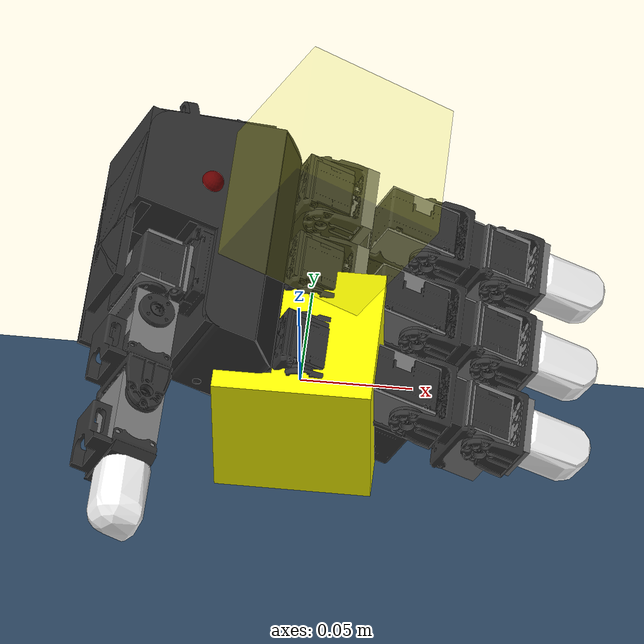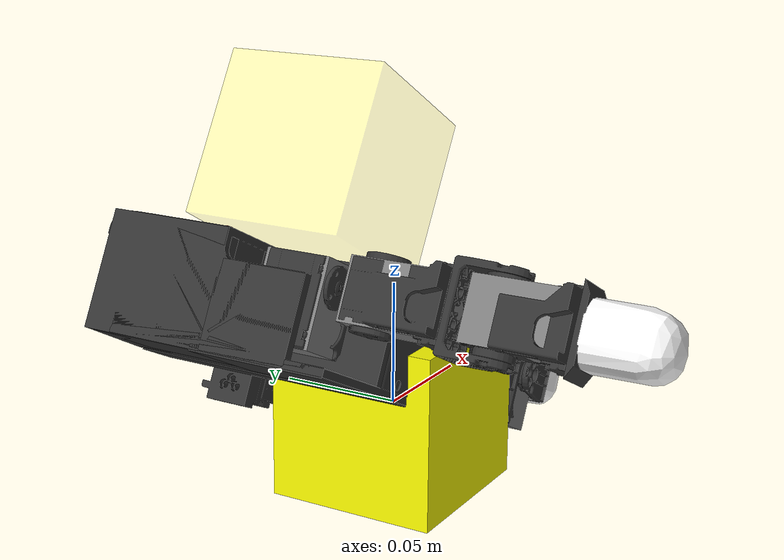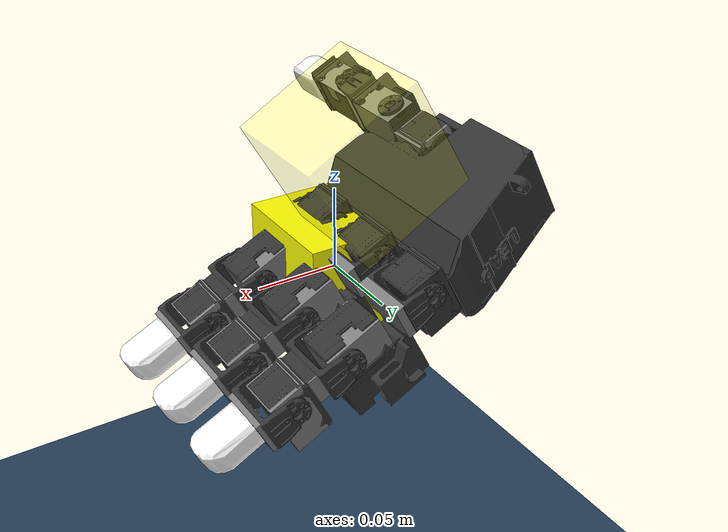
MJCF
<mujoco model="leap_scene">
  <include file="leap_right_hand.xml"/>

  <option timestep="0.005" ccd_iterations="25">
  </option>

  <statistic center="0.15 0 0" extent="0.4" meansize="0.01"/>

  <visual>
    <headlight diffuse=".8 .8 .8" ambient=".2 .2 .2" specular="1 1 1"/>
    <rgba force="1 0 0 1"/>
    <global azimuth="120" elevation="-20"/>
    <map force="0.01" stiffness="500"/>
    <scale forcewidth="0.1" contactwidth="0.5" contactheight="0.2"/>
    <quality shadowsize="8192"/>
  </visual>

  <asset>
    <texture type="skybox" builtin="gradient" rgb1="0.3 0.5 0.7" rgb2="0 0 0" width="512" height="3072"/>
    <texture type="2d" name="groundplane" builtin="checker" mark="edge" rgb1="0.2 0.3 0.4" rgb2="0.1 0.2 0.3"
      markrgb="0.8 0.8 0.8" width="300" height="300"/>
    <material name="groundplane" texture="groundplane" texuniform="true" texrepeat="5 5" reflectance="0.2"/>

    <texture name='cube_surface' file="iris_block.png" gridsize="3 4" gridlayout=".U..LFRB.D.."/>
    <material name="obj_material" texture="cube_surface" specular="5" shininess=".0"/>
  </asset>

  <worldbody>
    <camera name="side" pos="0.0 -0.1 0.3" xyaxes="1.0 0.0 0.0 0.0 1.0 0.6"/>

    <camera name="top" pos="0.2 0.02 0.4" xyaxes="0.0 1.0 0.0 -1.0 0.0 0.5"/>

    <geom name="floor" pos="0 0 -0.25" size="0 0 0.01" type="plane" material="groundplane" contype="2" conaffinity="2"/>

    <body name="obj" >
      <freejoint name="obj_freejoint" />
      <geom name="obj" type="box" material="obj_material" size="0.035 0.035 0.035"
        friction="0.5" rgba="1.0 1.0 0 0.99" mass="0.14"
        />
    </body>
    <body name="obj_target" mocap="true" pos="0.012 0.04 0.09" euler="0 0.5235 0" >
      <site name="obj_target" type="box" material="obj_material" size="0.035 0.035 0.035"
        rgba="1.0 1.0 0 0.1"
      />
    </body>
    <!-- pos="0.012 0.04 0.085" euler="0 0.5235 1.5708" -->

  </worldbody>

  <keyframe>
    <key name="home"
      qpos="
      0.74346777  -0.56903687  0.91440081  0.5741493
      -0.010605284  -0.08351411  0.70321997  1.0184264
      0.80782262  0.61122899  0.92718954  0.61047876
      0.69887738  1.438706  1.3375555  0.19482527
      0.018495468  0.033628956  0.083264539  0.93823638
      0.12995374  0.31377877  0.066086313"

      qvel="
      -0.0003193589  1.1689883e-06  -1.6904454e-06  -3.7040302e-07
      -5.4531138e-05  2.4796018e-08  -1.2248035e-07  -7.534937e-08
      0.00022793188  -0.0001006425  1.3555482e-06  2.8127742e-07
      -9.308786e-15  -7.4701003e-15  -4.2934871e-15  5.6274952e-16
      0.0015452673  -0.00050303437  -0.0010494515  -0.00054905434
      0.007791526  0.046817463"

      ctrl="
      0.765751  -0.568012  0.916951  0.573897
      -0.0191225  -0.0837503  0.709056  1.01884
      0.830768  0.610365  0.929305  0.610097
      0.69912  1.44581  1.33179  0.192794"
      />
    <key name="home_2"
      qpos="
      0.74144599 -0.56783389  0.91439081  0.57414715
      -0.01457676 -0.08250592 0.68577794  1.00756856
      0.80733435  0.61294103  0.92718518  0.61047777
      0.69887738  1.43870599  1.3375555   0.19482527
      0.012 0.04 0.08
      0.966 0 0.259 0"

      qvel="
      0.0 0.0 0.0 0.0
      0.0 0.0 0.0 0.0
      0.0 0.0 0.0 0.0
      0.0 0.0 0.0 0.0
      0.0 0.0 0.0
      0.0 0.0 0.0"

      ctrl="
      0.765751 -0.568012 0.916951 0.573897
      -0.0191225 -0.0837503 0.709056 1.01884
      0.830768 0.610365 0.929305 0.610097
      0.69912 1.44581 1.33179 0.192794"
      />
  </keyframe>
</mujoco>

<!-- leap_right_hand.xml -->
<mujoco model="leap_rh">
  <compiler angle="radian" meshdir="./assets/"/>
  <!-- impratio="100" cone="elliptic" -->
  <option integrator="implicitfast" cone="elliptic"/>

  <!-- mesh assets -->
  <asset>
    <material name="black" rgba="0.2 0.2 0.2 1" />
    <material name="white" rgba="1 1 1 1" />

    <mesh name="palm" file="palm_right.obj"/>
    <mesh name="base" file="base.obj"/>
    <mesh name="proximal" file="proximal.obj"/>
    <mesh name="medial" file="medial.obj"/>
    <mesh name="distal" file="distal.obj"/>
    <mesh name="tip" file="tip.obj"/>
    <mesh name="thumb_base" file="thumb_base.obj"/>
    <mesh name="thumb_proximal" file="thumb_proximal.obj"/>
    <mesh name="thumb_distal" file="thumb_distal.obj"/>
    <mesh name="thumb_tip" file="thumb_tip.obj"/>
  </asset>

  <!-- defaults -->
  <default>
    <!-- constraint stiffness solref="0.008 1" solimp= 0.95 0.99 0.0001 0.5 2 "0.999 0.999 0.001 0.0001 1"  -->
    <geom solimp="0.90 0.95 0.01 0.5 2" solref="0.008 1" friction="0.5"/>

    <!-- actuator defaults -->
    <position kp="3.0" kv="0.01" />
    <joint damping="0.03" frictionloss="0.001"/>
    <!-- ADDED THE ARMATURE AND FORCE RANGE AND IT STABALIZED THE SIM A LOT! frictionloss="0.001" <-Moved  armature="0.0015" -->
    <!-- geom class defaults -->
    <default class="visual">
      <geom group="1" type="mesh" contype="0" conaffinity="0" density="0" material="black" />
    </default>
    <default class="collision">
      <geom material="black" />
    </default>
    <default class="tip">
      <geom type="mesh" mesh="tip" friction="0.5" material="white" />
    </default>
    <default class="thumb_tip">
      <geom type="mesh" mesh="thumb_tip" friction="0.5" material="white" />
    </default>

    <!-- joint class defaults -->
    <default class="mcp">
      <joint pos="0 0 0" axis="0 0 -1"
        limited="true" range="-0.0 2.23" />
      <position ctrlrange="-0.314 2.23" />
    </default>
    <default class="rot">
      <joint pos="0 0 0" axis="0 0 -1"
        limited="true" range="-1.047 1.047" />
      <position ctrlrange="-1.047 1.047" />
    </default>
    <default class="pip">
      <joint pos="0 0 0" axis="0 0 -1"
        limited="true" range="-0.506 1.885" />
      <position ctrlrange="-0.506 1.885" />
    </default>
    <default class="dip">
      <joint pos="0 0 0" axis="0 0 -1"
        limited="true" range="-0.366 2.042" />
      <position ctrlrange="-0.366 2.042" />
    </default>
    <default class="thumb_cmc">
      <joint pos="0 0 0" axis="0 0 -1"
        limited="true" range="-0.349 2.094" />
      <position ctrlrange="-0.349 2.094" />
    </default>
    <default class="thumb_axl">
      <joint pos="0 0 0" axis="0 0 -1"
        limited="true" range="-0.349 2.094" />
      <position ctrlrange="-0.349 2.094" />
    </default>
    <default class="thumb_mcp">
      <joint pos="0 0 0" axis="0 0 -1"
        limited="true" range="-0.47 2.443" />
      <position ctrlrange="-0.47 2.443" />
    </default>
    <default class="thumb_ipl">
      <joint pos="0 0 0" axis="0 0 -1"
        limited="true" range="-1.34 1.88" />
      <position ctrlrange="-1.34 1.88" />
    </default>
  </default>

  <!-- collision filtering -->
  <contact>
    <!-- filter the palm from all other finger bodies except the tips -->
    <exclude body1="palm" body2="if_bs" />
    <exclude body1="palm" body2="mf_bs" />
    <exclude body1="palm" body2="rf_bs" />
    <exclude body1="palm" body2="th_mp" />

    <exclude body1="palm" body2="if_px" />
    <exclude body1="palm" body2="mf_px" />
    <exclude body1="palm" body2="rf_px" />
    <exclude body1="palm" body2="th_bs" />

    <exclude body1="palm" body2="if_md" />
    <exclude body1="palm" body2="mf_md" />
    <exclude body1="palm" body2="rf_md" />
    <exclude body1="palm" body2="th_px" />

    <!-- none of the base fingertip geoms can touch each other -->
    <exclude body1="if_bs" body2="mf_bs" />
    <exclude body1="if_bs" body2="rf_bs" />
    <exclude body1="mf_bs" body2="rf_bs" />

    <exclude body1="th_mp" body2="if_bs" />
    <exclude body1="th_mp" body2="mf_bs" />
    <exclude body1="th_mp" body2="rf_bs" />
  </contact>

  <!-- actuators -->
  <actuator>
    <!-- index -->
    <position name="if_mcp_act" joint="if_mcp" class="mcp" />
    <position name="if_rot_act" joint="if_rot" class="rot" />
    <position name="if_pip_act" joint="if_pip" class="pip" />
    <position name="if_dip_act" joint="if_dip" class="dip" />

    <!-- middle -->
    <position name="mf_mcp_act" joint="mf_mcp" class="mcp" />
    <position name="mf_rot_act" joint="mf_rot" class="rot" />
    <position name="mf_pip_act" joint="mf_pip" class="pip" />
    <position name="mf_dip_act" joint="mf_dip" class="dip" />

    <!-- ring -->
    <position name="rf_mcp_act" joint="rf_mcp" class="mcp" />
    <position name="rf_rot_act" joint="rf_rot" class="rot" />
    <position name="rf_pip_act" joint="rf_pip" class="pip" />
    <position name="rf_dip_act" joint="rf_dip" class="dip" />

    <!-- thumb -->
    <position name="th_cmc_act" joint="th_cmc" class="thumb_cmc" />
    <position name="th_axl_act" joint="th_axl" class="thumb_axl" />
    <position name="th_mcp_act" joint="th_mcp" class="thumb_mcp" />
    <position name="th_ipl_act" joint="th_ipl" class="thumb_ipl" />
  </actuator>

  <!-- sensors -->
  <sensor>
    <!-- index -->
    <jointpos name="if_mcp_sensor" joint="if_mcp" />
    <jointpos name="if_rot_sensor" joint="if_rot" />
    <jointpos name="if_pip_sensor" joint="if_pip" />
    <jointpos name="if_dip_sensor" joint="if_dip" />

    <!-- middle -->
    <jointpos name="mf_mcp_sensor" joint="mf_mcp" />
    <jointpos name="mf_rot_sensor" joint="mf_rot" />
    <jointpos name="mf_pip_sensor" joint="mf_pip" />
    <jointpos name="mf_dip_sensor" joint="mf_dip" />

    <!-- ring -->
    <jointpos name="rf_mcp_sensor" joint="rf_mcp" />
    <jointpos name="rf_rot_sensor" joint="rf_rot" />
    <jointpos name="rf_pip_sensor" joint="rf_pip" />
    <jointpos name="rf_dip_sensor" joint="rf_dip" />

    <!-- thumb -->
    <jointpos name="th_cmc_sensor" joint="th_cmc" />
    <jointpos name="th_axl_sensor" joint="th_axl" />
    <jointpos name="th_mcp_sensor" joint="th_mcp" />
    <jointpos name="th_ipl_sensor" joint="th_ipl" />
  </sensor>

  <worldbody>
    <body name="palm" pos="0 0 0.01" quat="0 0.97236992  0 -0.23344536">
      <!-- palm -->
      <inertial pos="-0.049542 -0.042914 -0.010227" quat="0.565586 0.427629 -0.574956 0.408254" mass="0.237" diaginertia="0.000407345 0.000304759 0.000180736"/>
      <geom name="palm_visual" pos="-0.02 0.02575 -0.0347" quat="1 0 0 0" class="visual" mesh="palm"/>
      <geom name="palm_collision_1" size="0.011 0.013 0.017" pos="-0.009 0.008 -0.011" type="box" class="collision"/>
      <geom name="palm_collision_2" size="0.011 0.013 0.017" pos="-0.009 -0.037 -0.011" type="box" class="collision"/>
      <geom name="palm_collision_3" size="0.011 0.013 0.017" pos="-0.009 -0.082 -0.011" type="box" class="collision"/>
      <geom name="palm_collision_4" size="0.029 0.01 0.023" pos="-0.066 -0.078 -0.0115" quat="0.989016 0 0 -0.147806" type="box" class="collision"/>
      <geom name="palm_collision_5" size="0.01 0.06 0.015" pos="-0.03 -0.035 -0.003" type="box" class="collision"/>
      <geom name="palm_collision_6" size="0.005 0.06 0.01" pos="-0.032 -0.035 -0.024" quat="0.923956 0 0.382499 0" type="box" class="collision"/>
      <geom name="palm_collision_7" size="0.012 0.058 0.023" pos="-0.048 -0.033 -0.0115" type="box" class="collision"/>
      <geom name="palm_collision_8" size="0.022 0.026 0.023" pos="-0.078 -0.053 -0.0115" type="box" class="collision"/>
      <geom name="palm_collision_9" size="0.002 0.018 0.017" pos="-0.098 -0.009 -0.006" type="box" class="collision"/>
      <geom name="palm_collision_10" size="0.022 0.028 0.002" pos="-0.078 -0.003 0.01" type="box" class="collision"/>
      <site name="tag" pos="-0.067 -0.05 -0.035" rgba="0.5 0 0 0.8" quat="1 0 0 -1"/>

      <!-- index -->
        <body name="if_bs" pos="-0.007 0.023 -0.0187" quat="0.5 0.5 0.5 -0.5">
          <inertial pos="-0.022516 0.033882 0.016359" quat="0.388092 0.677951 -0.247713 0.573067"
            mass="0.044" diaginertia="1.74972e-05 1.61504e-05 7.21342e-06" />
          <joint name="if_mcp" class="mcp" />
          <geom name="if_bs_visual" pos="0.0084 0.0077 0.01465" quat="1 0 0 0" class="visual"
            mesh="base" />
          <geom name="if_bs_collision_1" size="0.01 0.003 0.017" pos="0 0.018 0.0147" type="box" />

          <body name="if_px" pos="-0.0122 0.0381 0.0145" quat="0.500003 -0.5 -0.499997 0.5">
            <inertial pos="0.0075 -0.0002 -0.011" quat="0 0.707107 0 0.707107" mass="0.032"
              diaginertia="4.8853e-06 4.3733e-06 3.0933e-06" />
            <joint name="if_rot" class="rot" />
            <geom name="if_px_visual" pos="0.0096 0.0002 0.0007" quat="0.500003 -0.5 -0.5 -0.499997"
              class="visual" mesh="proximal" />
            <geom name="if_px_collision" size="0.017 0.013 0.011" pos="0.0075 -0.0002 -0.011"
              type="box" />

            <body name="if_md" pos="0.015 0.0143 -0.013" quat="0.500003 0.5 -0.5 0.499997">
              <inertial pos="0.0054215 -0.029148 0.015" quat="0.687228 0.687228 0.166487 0.166487"
                mass="0.037" diaginertia="8.28004e-06 8.1598e-06 5.39516e-06" />
              <joint name="if_pip" class="pip" />
              <geom name="if_md_visual" pos="0.0211 -0.0084 0.0097" quat="2.67949e-08 -1 0 0"
                class="visual" mesh="medial" />
              <geom name="if_md_collision_1" size="0.008 0.003 0.013" pos="0 -0.02 0.015" type="box" />
              <geom name="if_md_collision_5" size="0.017 0.011 0.013" pos="0.0075 -0.035 0.015"
                type="box" />

              <body name="if_ds" pos="0 -0.0361 0.0002">
                <inertial pos="-0.0008794 -0.027019 0.014594"
                  quat="0.702905 0.710643 -0.0212937 -0.0214203" mass="0.016"
                  diaginertia="3.71863e-06 3.02396e-06 1.6518e-06" />
                <joint name="if_dip" class="dip" />
                <geom name="if_ds_visual" pos="0.0132 -0.0061 0.0144" quat="2.67949e-08 1 0 0"
                  class="visual" mesh="distal" />
                <geom name="if_ds_collision_1" size="0.01 0.003 0.015" pos="0 -0.017 0.015"
                  type="box" />

                <geom name="if_tip" class="tip" />
                <site name="if_tip" pos="0 -0.05 0.015" group="4"/>
              </body>

            </body>
          </body>
        </body>  <!--
        index -->

        <!-- middle -->
        <body name="mf_bs" pos="-0.0071 -0.0224 -0.0187" quat="0.500003 0.5 0.5 -0.499997">
          <inertial pos="-0.022516 0.033882 0.016359" quat="0.388092 0.677951 -0.247713 0.573067"
            mass="0.044" diaginertia="1.74972e-05 1.61504e-05 7.21342e-06" />
          <joint name="mf_mcp" class="mcp" />
          <geom name="mf_bs_visual" pos="0.0084 0.0077 0.01465" quat="1 0 0 0" class="visual"
            mesh="base" />
          <geom name="mf_bs_collision_1" size="0.01 0.003 0.017" pos="0 0.018 0.0147" type="box" />

          <body name="mf_px" pos="-0.0122 0.0381 0.0145" quat="0.500003 -0.5 -0.499997 0.5">
            <inertial pos="0.0075 -0.0002 -0.011" quat="0 0.707107 0 0.707107" mass="0.032"
              diaginertia="4.8853e-06 4.3733e-06 3.0933e-06" />
            <joint name="mf_rot" class="rot" />
            <geom name="mf_px_visual" pos="0.0096 0.0003 0.0007" quat="0.500003 -0.5 -0.5 -0.499997"
              class="visual" mesh="proximal" />
            <geom name="mf_px_collision" size="0.017 0.013 0.011" pos="0.0075 -0.0002 -0.011"
              type="box" />

            <body name="mf_md" pos="0.015 0.0143 -0.013" quat="0.500003 0.5 -0.5 0.499997">
              <inertial pos="0.0054215 -0.029148 0.015" quat="0.687228 0.687228 0.166487 0.166487"
                mass="0.037" diaginertia="8.28004e-06 8.1598e-06 5.39516e-06" />
              <joint name="mf_pip" class="pip" />
              <geom name="mf_md_visual" pos="0.0211 -0.0084 0.0097" quat="1.32679e-06 -1 0 0"
                class="visual" mesh="medial" />
              <geom name="mf_md_collision_1" size="0.008 0.003 0.013" pos="0 -0.02 0.015" type="box" />
              <geom name="mf_md_collision_5" size="0.017 0.011 0.013" pos="0.0075 -0.035 0.015"
                type="box" />

              <body name="mf_ds" pos="0 -0.0361 0.0002">
                <inertial pos="-0.0008794 -0.027019 0.014594"
                  quat="0.702905 0.710643 -0.0212937 -0.0214203" mass="0.016"
                  diaginertia="3.71863e-06 3.02396e-06 1.6518e-06" />
                <joint name="mf_dip" class="dip" />
                <geom name="mf_ds_visual" pos="0.0132 -0.0061 0.0145" quat="1.32679e-06 1 0 0"
                  class="visual" mesh="distal" />
                <geom name="mf_ds_collision_1" size="0.01 0.003 0.015" pos="0 -0.017 0.015"
                  type="box" />

                <geom name="mf_tip" class="tip" />
                <site name="mf_tip" pos="0 -0.05 0.015" group="4"/>
              </body>
            </body>
          </body>
        </body>  <!--
        middle -->

        <!-- ring -->
        <body name="rf_bs" pos="-0.00709 -0.0678 -0.0187" quat="0.500003 0.5 0.5 -0.499997">
          <inertial pos="-0.022516 0.033882 0.016359" quat="0.388092 0.677951 -0.247713 0.573067"
            mass="0.044" diaginertia="1.74972e-05 1.61504e-05 7.21342e-06" />
          <joint name="rf_mcp" class="mcp" />
          <geom name="rf_bs_visual" pos="0.0084 0.0077 0.01465" quat="1 0 0 0" class="visual"
            mesh="base" />
          <geom name="rf_bs_collision_1" size="0.01 0.003 0.017" pos="0 0.018 0.0147" type="box" />

          <body name="rf_px" pos="-0.0122 0.0381 0.0145" quat="0.500003 -0.5 -0.499997 0.5">
            <inertial pos="0.0075 -0.0002 -0.011" quat="0 0.707107 0 0.707107" mass="0.032"
              diaginertia="4.8853e-06 4.3733e-06 3.0933e-06" />
            <joint name="rf_rot" class="rot" />
            <geom name="rf_px_visual" pos="0.0096 0.0003 0.0007" quat="0.500003 -0.5 -0.5 -0.499997"
              class="visual" mesh="proximal" />
            <geom name="rf_px_collision" size="0.017 0.013 0.011" pos="0.0075 -0.0002 -0.011"
              type="box" />

            <body name="rf_md" pos="0.015 0.0143 -0.013" quat="0.500003 0.5 -0.5 0.499997">
              <inertial pos="0.0054215 -0.029148 0.015" quat="0.687228 0.687228 0.166487 0.166487"
                mass="0.037" diaginertia="8.28004e-06 8.1598e-06 5.39516e-06" />
              <joint name="rf_pip" class="pip" />
              <geom name="rf_md_visual" pos="0.0211 -0.0084 0.0097" quat="0 -1 0 0" class="visual"
                mesh="medial" />
              <geom name="rf_md_collision_1" size="0.008 0.003 0.013" pos="0 -0.02 0.015" type="box" />
              <geom name="rf_md_collision_5" size="0.017 0.011 0.013" pos="0.0075 -0.035 0.015"
                type="box" />

              <body name="rf_ds" pos="0 -0.03609 0.0002">
                <inertial pos="-0.0008794 -0.027019 0.014594"
                  quat="0.702905 0.710643 -0.0212937 -0.0214203" mass="0.016"
                  diaginertia="3.71863e-06 3.02396e-06 1.6518e-06" />
                <joint name="rf_dip" class="dip" />
                <geom name="rf_ds_visual" pos="0.0132 -0.0061 0.0145" quat="0 1 0 0" class="visual"
                  mesh="distal" />
                <geom name="rf_ds_collision_1" size="0.01 0.003 0.015" pos="0 -0.017 0.015"
                  type="box" />

                <geom name="rf_tip" class="tip" />
                <site name="rf_tip" pos="0 -0.05 0.015" group="4"/>
              </body>
            </body>
          </body>
        </body>  <!--
        ring -->

        <!-- thumb -->
        <body name="th_mp" pos="-0.0693 -0.0012 -0.0216" quat="0.707109 0 0.707105 0">
          <inertial pos="0.0075 -0.0002 -0.011" quat="0 0.707107 0 0.707107" mass="0.032"
            diaginertia="4.8853e-06 4.3733e-06 3.0933e-06" />
          <joint name="th_cmc" class="thumb_cmc" />
          <geom name="th_mp_visual" pos="-0.0053 0.0003 0.00078" quat="0.500003 -0.5 -0.5 -0.499997"
            class="visual" mesh="proximal" />
          <geom name="th_mp_collision" size="0.017 0.013 0.011" pos="-0.0075 -0.0002 -0.011"
            type="box" />

          <body name="th_bs" pos="0 0.0143 -0.013" quat="0.500003 0.5 -0.5 0.499997">
            <inertial pos="0 0 -0.0070806" quat="0.707107 0.707107 0 0" mass="0.003"
              diaginertia="6.1932e-07 5.351e-07 2.1516e-07" />
            <joint name="th_axl" class="thumb_axl" />

            <body name="th_px" pos="0 0.0145 -0.017" quat="0.707109 -0.707105 0 0">
              <inertial pos="-0.0020593 0.015912 -0.013733"
                quat="0.698518 0.697382 -0.104933 0.121324" mass="0.038"
                diaginertia="9.87104e-06 9.32653e-06 4.36203e-06" />
              <joint name="th_mcp" class="thumb_mcp" />
              <geom name="th_px_visual" pos="0.0439 0.0579 -0.0086" quat="1 0 0 0" class="visual"
                mesh="thumb_proximal" />
              <geom name="th_px_collision_1" size="0.01 0.02 0.012" pos="0 0.0105 -0.014" type="box" />

              <body name="th_ds" pos="0 0.0466 0.0002" quat="1.32679e-06 0 0 1">
                <inertial pos="0.00096191 -0.024203 -0.014419"
                  quat="0.35287 0.311272 -0.632839 0.614904" mass="0.049"
                  diaginertia="2.08591e-05 2.0402e-05 4.71335e-06" />
                <joint name="th_ipl" class="thumb_ipl" />
                <geom name="th_ds_visual" pos="0.0625 0.0784 0.0489" quat="1 0 0 0" class="visual"
                  mesh="thumb_distal" />
                <geom name="th_ds_collision_1" size="0.01 0.018 0.012" pos="0 -0.0085 -0.015"
                  type="box" />

                <geom name="th_tip" class="thumb_tip" />
                <site name="th_tip" pos="0 -0.06 -0.015" group="4"/>
              </body>
            </body>
          </body>
        </body>  <!--
        thumb -->

    </body>  <!-- palm -->
  </worldbody>
</mujoco>
